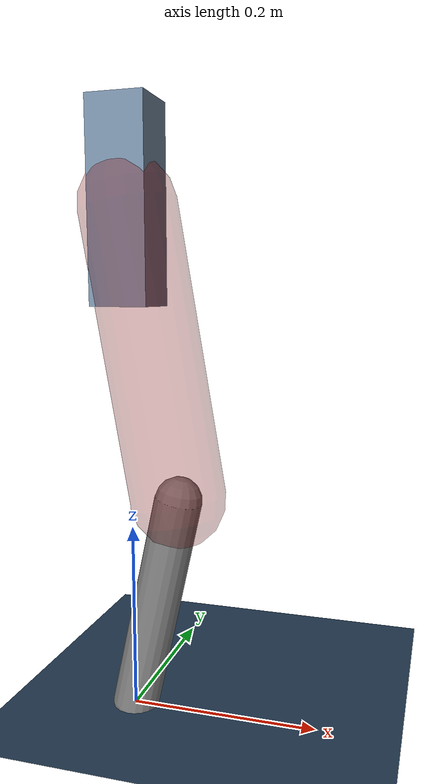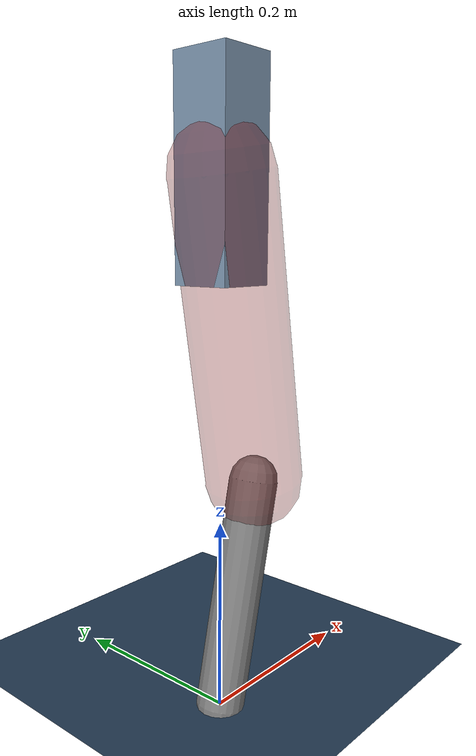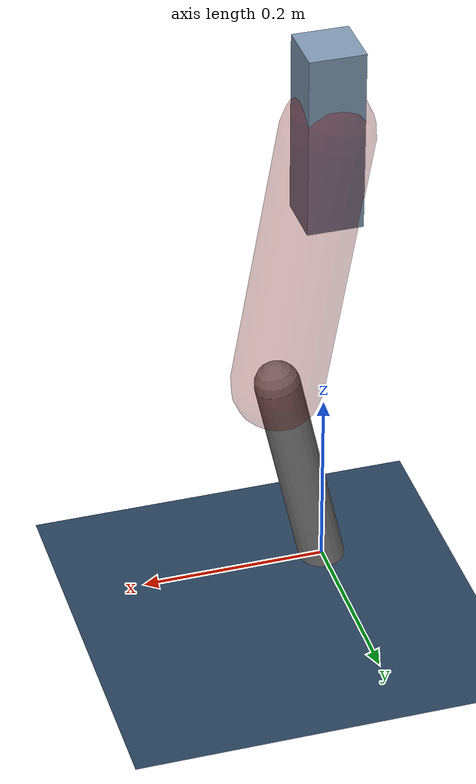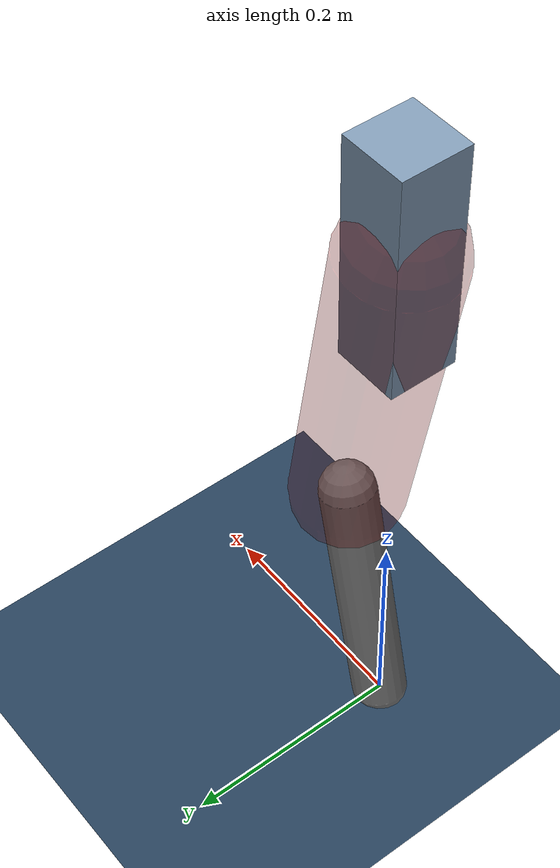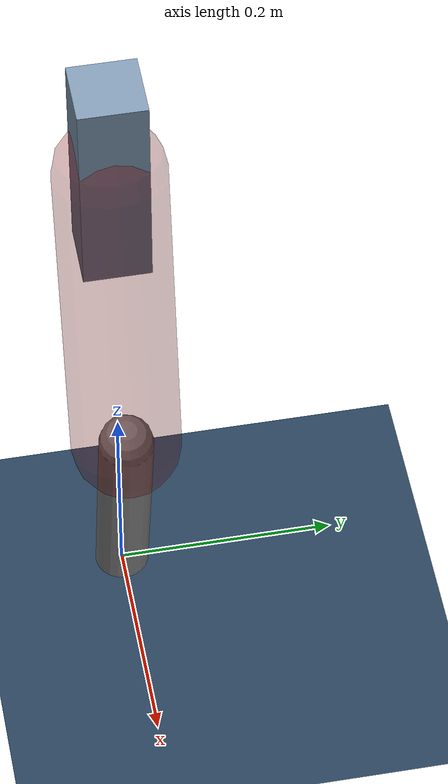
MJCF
<mujoco model="Hopper2D">
	<compiler inertiafromgeom="true" angle="radian" />
	<option timestep="0.001" integrator="implicit" cone="elliptic" solver="Newton" tolerance="1e-10" />

	<default>
		<geom contype="1" conaffinity="1" condim="3" friction="2 0.005 0.0001" solref="0.005 1" />
		<joint limited="true" damping="0.1" />
	</default>

	<asset>
		<texture name="skybox" type="skybox" builtin="gradient" rgb1=".4 .6 .8" rgb2="0 0 0" width="800" height="800" />
		<texture name="grid" type="2d" builtin="checker" rgb1=".1 .2 .3" rgb2=".2 .3 .4" width="300" height="300" mark="edge" markrgb=".2 .3 .4" />
		<material name="ground" texture="grid" texrepeat="1 1" texuniform="true" reflectance="0.1" />
		<material name="leg" rgba="0.5 0.6 0.7 1" />
	</asset>

	<worldbody>

		<geom name="floor" type="plane" size="5 5 0.25" material="ground" />

		<light directional="false" diffuse="0.8 0.8 0.8" specular="0.3 0.3 0.3" pos="0 0 2" dir="0 0 -1" />
		<light mode="targetbodycom" target="base" directional="false" diffuse="0.8 0.8 0.8" specular="0.3 0.3 0.3" pos="0 0 2" dir="0 0 -1" />

		<camera name="fixed" pos="0 -2 1" xyaxes="1 0 0 0 0 1" />
		<camera name="tracking" mode="trackcom" pos="0 -3 1" />

		<body name="root" pos="0 0 0.5328249821198562">
			<joint name="slide_x" type="slide" axis="1 0 0" range="-100 100" />
			<joint name="slide_z" type="slide" axis="0 0 1" range="0 10" />

			<body name="base" pos="0 0 0">
				<geom name="torso" type="box" size="0.03 0.03 0.1" mass="2.855" material="leg" />

				<body name="link1" pos="0 0 0" euler="0 1.4001175084196558 0">
					<joint type="hinge" axis="0 -1 0" pos="0 0 0" name="hinge1" limited="true" range="-3.14 3.14" stiffness="0" damping="0.1" />
					<geom name="thigh" type="capsule" fromto="0 0 0 0.3031347508372992 0 0" size="0.05" rgba="0.5 0 0 0.3" mass="0.9972638272607078" />

					<body name="link2" pos="0.3031347508372992 0 0" euler="0 0.38717604277889023 0">
						<joint type="hinge" axis="0 -1 0" pos="0 0 0" name="hinge2" limited="true" range="-3.14 3.14" stiffness="0" damping="0.1" />
						<geom name="shank" type="capsule" fromto="0 0 0 0.239690231282557 0 0" size="0.025" mass="0.43402120815430134" />

					</body>
				</body>
			</body>
		</body>
	</worldbody>

	<actuator>
		<motor name="torque1" joint="hinge1" ctrlrange="-89.64372222660734 89.64372222660734" ctrllimited="true" gear="1" />
		<motor name="torque2" joint="hinge2" ctrlrange="-128.32936299683635 128.32936299683635" ctrllimited="true" gear="1" />
	</actuator>
</mujoco>
